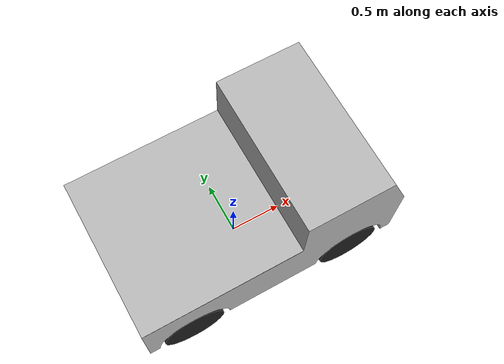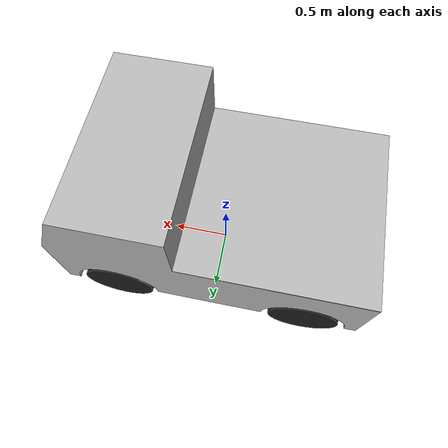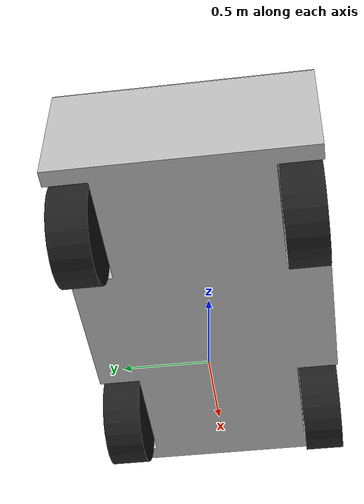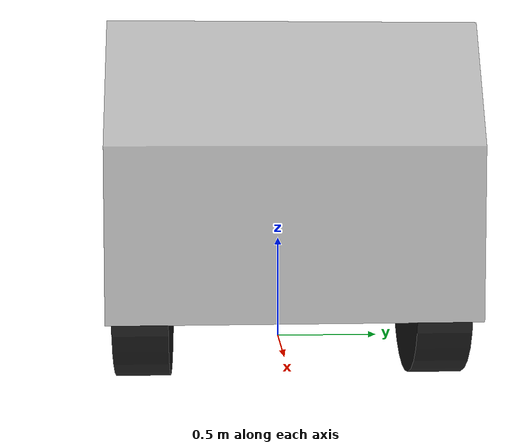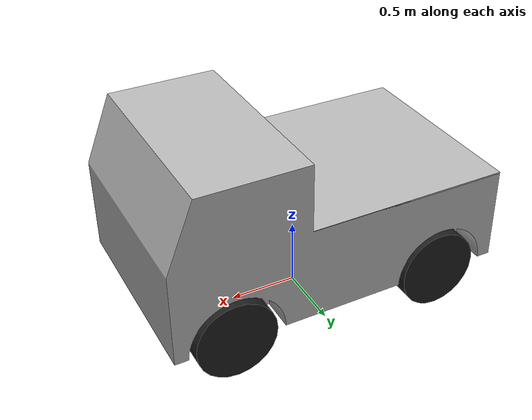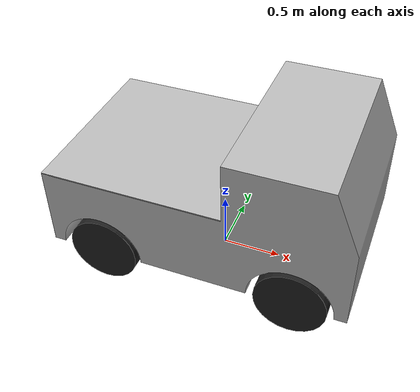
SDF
<?xml version="1.0"?>
<sdf version="1.4">
  <model name='truck'>
      <static>1</static>
      <link name='link_truck'>
        <pose>0 0 0.595 0 -0 0</pose>
        <collision name='collision'>
          <geometry>
            <mesh>
              <uri>model://truck/meshes/truck.dae</uri>
              <scale>0.001 0.001 0.001</scale>
            </mesh>
          </geometry>
          <surface>
            <friction>
              <ode>
                <mu>100</mu>
                <mu2>50</mu2>
              </ode>
            </friction>
          <bounce>
            <restitution_coefficient>0</restitution_coefficient>
            <threshold>1e+06</threshold>
          </bounce>
          <contact>
            <collide_without_contact>0</collide_without_contact>
            <collide_without_contact_bitmask>1</collide_without_contact_bitmask>
            <ode>
              <soft_cfm>0</soft_cfm>
              <soft_erp>0.2</soft_erp>
              <kp>1e+13</kp>
              <kd>1</kd>
              <max_vel>0.01</max_vel>
              <min_depth>0</min_depth>
            </ode>
            <bullet>
              <split_impulse>1</split_impulse>
              <split_impulse_penetration_threshold>-0.01</split_impulse_penetration_threshold>
              <soft_cfm>0</soft_cfm>
              <soft_erp>0.2</soft_erp>
              <kp>1e+13</kp>
              <kd>1</kd>
            </bullet>
          </contact>
          </surface>
          <max_contacts>10</max_contacts>
          <laser_retro>0</laser_retro>
        </collision>
        <visual name='visual'>
          <cast_shadows>1</cast_shadows>
          <transparency>0</transparency>
          <geometry>
            <mesh>
              <uri>model://truck/meshes/truck.dae</uri>
              <scale>0.001 0.001 0.001</scale>
            </mesh>
          </geometry>
        </visual>

        <visual name='visual_front_left_tire'>
          <pose>0.8 0.625 -0.3 1.5707 0 0</pose>
          <cast_shadows>1</cast_shadows>
          <transparency>0</transparency>
          <geometry>
            <cylinder>
              <radius>.295</radius>
              <length>.23</length>
            </cylinder>
          </geometry>
          <material>
            <script>
              <uri>file://media/materials/scripts/gazebo.material</uri>
              <name>Gazebo/Black</name>
            </script>
          </material>
        </visual>

        <visual name='visual_front_right_tire'>
          <pose>0.8 -0.625 -0.3 1.5707 0 0</pose>
          <cast_shadows>1</cast_shadows>
          <transparency>0</transparency>
          <geometry>
            <cylinder>
              <radius>.295</radius>
              <length>.23</length>
            </cylinder>
          </geometry>
          <material>
            <script>
              <uri>file://media/materials/scripts/gazebo.material</uri>
              <name>Gazebo/Black</name>
            </script>
          </material>
        </visual>

        <visual name='visual_rear_left_tire'>
          <pose>-0.8 0.625 -0.3 1.5707 0 0</pose>
          <cast_shadows>1</cast_shadows>
          <transparency>0</transparency>
          <geometry>
            <cylinder>
              <radius>.295</radius>
              <length>.23</length>
            </cylinder>
          </geometry>
          <material>
            <script>
              <uri>file://media/materials/scripts/gazebo.material</uri>
              <name>Gazebo/Black</name>
            </script>
          </material>
        </visual>

        <visual name='visual_rear_right_tire'>
          <pose>-0.8 -0.625 -0.3 1.5707 0 0</pose>
          <cast_shadows>1</cast_shadows>
          <transparency>0</transparency>
          <geometry>
            <cylinder>
              <radius>.295</radius>
              <length>.23</length>
            </cylinder>
          </geometry>
          <material>
            <script>
              <uri>file://media/materials/scripts/gazebo.material</uri>
              <name>Gazebo/Black</name>
            </script>
          </material>
        </visual>

        <velocity_decay>
          <linear>0</linear>
          <angular>0</angular>
        </velocity_decay>
        <self_collide>0</self_collide>
        <kinematic>0</kinematic>
        <gravity>1</gravity>
      </link>

      <link name="heliport">
        <pose>-0.5 0 0.995 0 0 0</pose>
        <collision name="collision">
          <geometry>
            <mesh>
              <uri>model://truck/meshes/heliport.dae</uri>
            </mesh>
          </geometry>
          <surface>
            <friction>
              <ode>
                <mu>100</mu>
                <mu2>50</mu2>
              </ode>
            </friction>
          <bounce>
            <restitution_coefficient>0</restitution_coefficient>
            <threshold>1e+06</threshold>
          </bounce>
          <contact>
            <collide_without_contact>0</collide_without_contact>
            <collide_without_contact_bitmask>1</collide_without_contact_bitmask>
            <ode>
              <soft_cfm>0</soft_cfm>
              <soft_erp>0.2</soft_erp>
              <kp>1e+13</kp>
              <kd>1</kd>
              <max_vel>0.01</max_vel>
              <min_depth>0</min_depth>
            </ode>
            <bullet>
              <split_impulse>1</split_impulse>
              <split_impulse_penetration_threshold>-0.01</split_impulse_penetration_threshold>
              <soft_cfm>0</soft_cfm>
              <soft_erp>0.2</soft_erp>
              <kp>1e+13</kp>
              <kd>1</kd>
            </bullet>
          </contact>
          </surface>
          <max_contacts>10</max_contacts>
          <laser_retro>0</laser_retro>
        </collision>
        <visual name="visual">
          <geometry>
            <mesh>
              <uri>model://truck/meshes/heliport.dae</uri>
            </mesh>
          </geometry>
        </visual>
      </link>

  </model>
</sdf>
